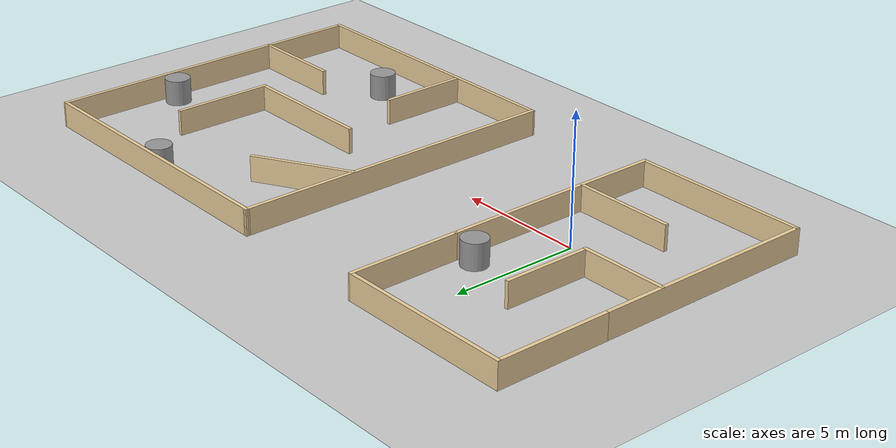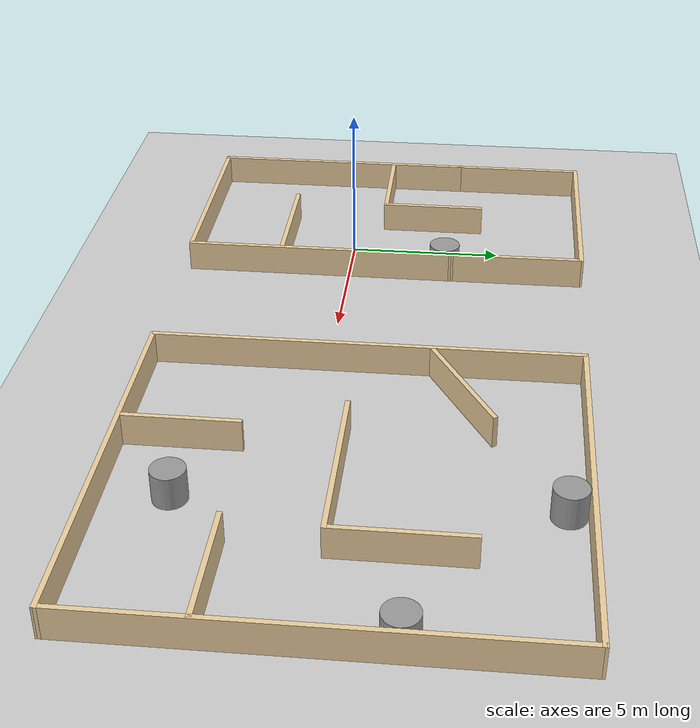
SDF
<sdf version="1.7">
 <world name="racecar_rl_env">
  <light name="sun" type="directional">
   <pose>0 0 10 0 -0 0</pose>
   <diffuse>0.8 0.8 0.8 1</diffuse>
   <specular>0.2 0.2 0.2 1</specular>
   <attenuation>
    <range>1000</range>
    <constant>0.9</constant>
    <linear>0.01</linear>
    <quadratic>0.001</quadratic>
   </attenuation>
   <direction>-0.5 0.1 -0.9</direction>
   <spot><inner_angle>0</inner_angle><outer_angle>0</outer_angle><falloff>0</falloff></spot>
  </light>
  <model name="ground_plane">
   <static>1</static>
   <link name="link">
    <collision name="collision">
     <geometry><plane><normal>0 0 1</normal><size>100 100</size></plane></geometry>
     <surface>
      <contact><collide_bitmask>65535</collide_bitmask></contact>
      <friction><ode><mu>100</mu><mu2>50</mu2></ode></friction>
     </surface>
    </collision>
    <visual name="visual">
     <cast_shadows>0</cast_shadows>
     <geometry><plane><normal>0 0 1</normal><size>100 100</size></plane></geometry>
     <material>
      <script><uri>file://media/materials/scripts/gazebo.material</uri><name>Gazebo/Grey</name></script>
     </material>
    </visual>
   </link>
  </model>
  <gravity>0 0 -9.8</gravity>
  <magnetic_field>6e-06 2.3e-05 -4.2e-05</magnetic_field>
  <atmosphere type="adiabatic"/>
  <physics type="ode">
   <max_step_size>0.001</max_step_size>
   <real_time_factor>1</real_time_factor>
   <real_time_update_rate>1000</real_time_update_rate>
  </physics>
  <scene><ambient>0.4 0.4 0.4 1</ambient><background>0.7 0.7 0.7 1</background><shadows>1</shadows></scene>
  <spherical_coordinates>
   <surface_model>EARTH_WGS84</surface_model>
   <latitude_deg>0</latitude_deg>
   <longitude_deg>0</longitude_deg>
   <elevation>0</elevation>
   <heading_deg>0</heading_deg>
  </spherical_coordinates>
  <model name="rl_env">
   <pose>7.24657 1.2102 0 0 -0 0</pose>
   <link name="Wall_0">
    <collision name="Wall_0_Collision">
     <geometry><box><size>7.026 0.15 1</size></box></geometry>
     <pose>0 0 0.5 0 -0 0</pose>
    </collision>
    <visual name="Wall_0_Visual">
     <pose>0 0 0.5 0 -0 0</pose>
     <geometry><box><size>7.026 0.15 1</size></box></geometry>
     <material>
      <script><uri>file://media/materials/scripts/gazebo.material</uri><name>Gazebo/Grey</name></script>
      <ambient>0.921569 0.807843 0.615686 1</ambient>
     </material>
     <meta><layer>0</layer></meta>
    </visual>
    <pose>-8.82857 -6.6002 0 0 -0 0</pose>
   </link>
   <link name="Wall_1">
    <collision name="Wall_1_Collision">
     <geometry><box><size>9 0.15 1</size></box></geometry>
     <pose>0 0 0.5 0 -0 0</pose>
    </collision>
    <visual name="Wall_1_Visual">
     <pose>0 0 0.5 0 -0 0</pose>
     <geometry><box><size>9 0.15 1</size></box></geometry>
     <material>
      <script><uri>file://media/materials/scripts/gazebo.material</uri><name>Gazebo/Grey</name></script>
      <ambient>0.921569 0.807843 0.615686 1</ambient>
     </material>
     <meta><layer>0</layer></meta>
    </visual>
    <pose>-5.39057 -2.1752 0 0 -0 1.5708</pose>
   </link>
   <link name="Wall_10">
    <collision name="Wall_10_Collision">
     <geometry><box><size>4.5 0.15 1</size></box></geometry>
     <pose>0 0 0.5 0 -0 0</pose>
    </collision>
    <visual name="Wall_10_Visual">
     <pose>0 0 0.5 0 -0 0</pose>
     <geometry><box><size>4.5 0.15 1</size></box></geometry>
     <material>
      <script><uri>file://media/materials/scripts/gazebo.material</uri><name>Gazebo/Grey</name></script>
      <ambient>0.921569 0.807843 0.615686 1</ambient>
     </material>
     <meta><layer>0</layer></meta>
    </visual>
    <pose>-5.40357 4.4248 0 0 -0 1.57677</pose>
   </link>
   <link name="Wall_11">
    <collision name="Wall_11_Collision">
     <geometry><box><size>7 0.15 1</size></box></geometry>
     <pose>0 0 0.5 0 -0 0</pose>
    </collision>
    <visual name="Wall_11_Visual">
     <pose>0 0 0.5 0 -0 0</pose>
     <geometry><box><size>7 0.15 1</size></box></geometry>
     <material>
      <script><uri>file://media/materials/scripts/gazebo.material</uri><name>Gazebo/Grey</name></script>
      <ambient>0.921569 0.807843 0.615686 1</ambient>
     </material>
     <meta><layer>0</layer></meta>
    </visual>
    <pose>-8.84157 6.5998 0 0 -0 3.14159</pose>
   </link>
   <link name="Wall_12">
    <collision name="Wall_12_Collision">
     <geometry><box><size>4.5 0.15 1</size></box></geometry>
     <pose>0 0 0.5 0 -0 0</pose>
    </collision>
    <visual name="Wall_12_Visual">
     <pose>0 0 0.5 0 -0 0</pose>
     <geometry><box><size>4.5 0.15 1</size></box></geometry>
     <material>
      <script><uri>file://media/materials/scripts/gazebo.material</uri><name>Gazebo/Grey</name></script>
      <ambient>0.921569 0.807843 0.615686 1</ambient>
     </material>
     <meta><layer>0</layer></meta>
    </visual>
    <pose>-12.2666 4.4248 0 0 -0 -1.5708</pose>
   </link>
   <link name="Wall_14">
    <collision name="Wall_14_Collision">
     <geometry><box><size>3.5 0.15 1</size></box></geometry>
     <pose>0 0 0.5 0 -0 0</pose>
    </collision>
    <visual name="Wall_14_Visual">
     <pose>0 0 0.5 0 -0 0</pose>
     <geometry><box><size>3.5 0.15 1</size></box></geometry>
     <material>
      <script><uri>file://media/materials/scripts/gazebo.material</uri><name>Gazebo/Grey</name></script>
      <ambient>0.921569 0.807843 0.615686 1</ambient>
     </material>
     <meta><layer>0</layer></meta>
    </visual>
    <pose>-8.89757 1.4448 0 0 -0 1.5708</pose>
   </link>
   <link name="Wall_16">
    <collision name="Wall_16_Collision">
     <geometry><box><size>12 0.15 1</size></box></geometry>
     <pose>0 0 0.5 0 -0 0</pose>
    </collision>
    <visual name="Wall_16_Visual">
     <pose>0 0 0.5 0 -0 0</pose>
     <geometry><box><size>12 0.15 1</size></box></geometry>
     <material>
      <script><uri>file://media/materials/scripts/gazebo.material</uri><name>Gazebo/Grey</name></script>
      <ambient>0.921569 0.807843 0.615686 1</ambient>
     </material>
     <meta><layer>0</layer></meta>
    </visual>
    <pose>6.34143 -6.5702 0 0 -0 0</pose>
   </link>
   <link name="Wall_17">
    <collision name="Wall_17_Collision">
     <geometry><box><size>13.25 0.15 1</size></box></geometry>
     <pose>0 0 0.5 0 -0 0</pose>
    </collision>
    <visual name="Wall_17_Visual">
     <pose>0 0 0.5 0 -0 0</pose>
     <geometry><box><size>13.25 0.15 1</size></box></geometry>
     <material>
      <script><uri>file://media/materials/scripts/gazebo.material</uri><name>Gazebo/Grey</name></script>
      <ambient>0.921569 0.807843 0.615686 1</ambient>
     </material>
     <meta><layer>0</layer></meta>
    </visual>
    <pose>12.2534 -0.020204 0 0 -0 1.57278</pose>
   </link>
   <link name="Wall_18">
    <collision name="Wall_18_Collision">
     <geometry><box><size>12 0.15 1</size></box></geometry>
     <pose>0 0 0.5 0 -0 0</pose>
    </collision>
    <visual name="Wall_18_Visual">
     <pose>0 0 0.5 0 -0 0</pose>
     <geometry><box><size>12 0.15 1</size></box></geometry>
     <material>
      <script><uri>file://media/materials/scripts/gazebo.material</uri><name>Gazebo/Grey</name></script>
      <ambient>0.921569 0.807843 0.615686 1</ambient>
     </material>
     <meta><layer>0</layer></meta>
    </visual>
    <pose>6.31543 6.5298 0 0 -0 3.14159</pose>
   </link>
   <link name="Wall_19">
    <collision name="Wall_19_Collision">
     <geometry><box><size>13.25 0.15 1</size></box></geometry>
     <pose>0 0 0.5 0 -0 0</pose>
    </collision>
    <visual name="Wall_19_Visual">
     <pose>0 0 0.5 0 -0 0</pose>
     <geometry><box><size>13.25 0.15 1</size></box></geometry>
     <material>
      <script><uri>file://media/materials/scripts/gazebo.material</uri><name>Gazebo/Grey</name></script>
      <ambient>0.921569 0.807843 0.615686 1</ambient>
     </material>
     <meta><layer>0</layer></meta>
    </visual>
    <pose>0.403426 -0.020204 0 0 -0 -1.56881</pose>
   </link>
   <link name="Wall_21">
    <collision name="Wall_21_Collision">
     <geometry><box><size>5.5 0.15 1</size></box></geometry>
     <pose>0 0 0.5 0 -0 0</pose>
    </collision>
    <visual name="Wall_21_Visual">
     <pose>0 0 0.5 0 -0 0</pose>
     <geometry><box><size>5.5 0.15 1</size></box></geometry>
     <material>
      <script><uri>file://media/materials/scripts/gazebo.material</uri><name>Gazebo/Grey</name></script>
      <ambient>0.921569 0.807843 0.615686 1</ambient>
     </material>
     <meta><layer>0</layer></meta>
    </visual>
    <pose>6.15943 -0.253204 0 0 -0 0</pose>
   </link>
   <link name="Wall_22">
    <collision name="Wall_22_Collision">
     <geometry><box><size>4 0.15 1</size></box></geometry>
     <pose>0 0 0.5 0 -0 0</pose>
    </collision>
    <visual name="Wall_22_Visual">
     <pose>0 0 0.5 0 -0 0</pose>
     <geometry><box><size>4 0.15 1</size></box></geometry>
     <material>
      <script><uri>file://media/materials/scripts/gazebo.material</uri><name>Gazebo/Grey</name></script>
      <ambient>0.921569 0.807843 0.615686 1</ambient>
     </material>
     <meta><layer>0</layer></meta>
    </visual>
    <pose>8.83443 1.6718 0 0 -0 1.5708</pose>
   </link>
   <link name="Wall_24">
    <collision name="Wall_24_Collision">
     <geometry><box><size>3.5 0.15 1</size></box></geometry>
     <pose>0 0 0.5 0 -0 0</pose>
    </collision>
    <visual name="Wall_24_Visual">
     <pose>0 0 0.5 0 -0 0</pose>
     <geometry><box><size>3.5 0.15 1</size></box></geometry>
     <material>
      <script><uri>file://media/materials/scripts/gazebo.material</uri><name>Gazebo/Grey</name></script>
      <ambient>0.921569 0.807843 0.615686 1</ambient>
     </material>
     <meta><layer>0</layer></meta>
    </visual>
    <pose>4.65543 -4.8042 0 0 -0 1.5708</pose>
   </link>
   <link name="Wall_26">
    <collision name="Wall_26_Collision">
     <geometry><box><size>3.75 0.15 1</size></box></geometry>
     <pose>0 0 0.5 0 -0 0</pose>
    </collision>
    <visual name="Wall_26_Visual">
     <pose>0 0 0.5 0 -0 0</pose>
     <geometry><box><size>3.75 0.15 1</size></box></geometry>
     <material>
      <script><uri>file://media/materials/scripts/gazebo.material</uri><name>Gazebo/Grey</name></script>
      <ambient>0.921569 0.807843 0.615686 1</ambient>
     </material>
     <meta><layer>0</layer></meta>
    </visual>
    <pose>10.4094 -2.9372 0 0 -0 3.14159</pose>
   </link>
   <link name="Wall_28">
    <collision name="Wall_28_Collision">
     <geometry><box><size>4 0.15 1</size></box></geometry>
     <pose>0 0 0.5 0 -0 0</pose>
    </collision>
    <visual name="Wall_28_Visual">
     <pose>0 0 0.5 0 -0 0</pose>
     <geometry><box><size>4 0.15 1</size></box></geometry>
     <material>
      <script><uri>file://media/materials/scripts/gazebo.material</uri><name>Gazebo/Grey</name></script>
      <ambient>0.921569 0.807843 0.615686 1</ambient>
     </material>
     <meta><layer>0</layer></meta>
    </visual>
    <pose>2.10043 2.9213 0 0 -0 0.523624</pose>
   </link>
   <link name="Wall_3">
    <collision name="Wall_3_Collision">
     <geometry><box><size>9 0.15 1</size></box></geometry>
     <pose>0 0 0.5 0 -0 0</pose>
    </collision>
    <visual name="Wall_3_Visual">
     <pose>0 0 0.5 0 -0 0</pose>
     <geometry><box><size>9 0.15 1</size></box></geometry>
     <material>
      <script><uri>file://media/materials/scripts/gazebo.material</uri><name>Gazebo/Grey</name></script>
      <ambient>0.921569 0.807843 0.615686 1</ambient>
     </material>
     <meta><layer>0</layer></meta>
    </visual>
    <pose>-12.2666 -2.1752 0 0 -0 -1.5708</pose>
   </link>
   <link name="Wall_6">
    <collision name="Wall_6_Collision">
     <geometry><box><size>3.5 0.15 1</size></box></geometry>
     <pose>0 0 0.5 0 -0 0</pose>
    </collision>
    <visual name="Wall_6_Visual">
     <pose>0 0 0.5 0 -0 0</pose>
     <geometry><box><size>3.5 0.15 1</size></box></geometry>
     <material>
      <script><uri>file://media/materials/scripts/gazebo.material</uri><name>Gazebo/Grey</name></script>
      <ambient>0.921569 0.807843 0.615686 1</ambient>
     </material>
     <meta><layer>0</layer></meta>
    </visual>
    <pose>-10.5726 -0.230204 0 0 -0 0</pose>
   </link>
   <link name="Wall_8">
    <collision name="Wall_8_Collision">
     <geometry><box><size>4 0.15 1</size></box></geometry>
     <pose>0 0 0.5 0 -0 0</pose>
    </collision>
    <visual name="Wall_8_Visual">
     <pose>0 0 0.5 0 -0 0</pose>
     <geometry><box><size>4 0.15 1</size></box></geometry>
     <material>
      <script><uri>file://media/materials/scripts/gazebo.material</uri><name>Gazebo/Grey</name></script>
      <ambient>0.921569 0.807843 0.615686 1</ambient>
     </material>
     <meta><layer>0</layer></meta>
    </visual>
    <pose>-7.38457 -3.4922 0 0 -0 3.14159</pose>
   </link>
   <static>1</static>
  </model>
  <model name="unit_cylinder">
   <pose>1.18623 3.21908 0.499993 -3e-06 -3e-06 0</pose>
   <link name="link">
    <inertial>
     <mass>1</mass>
     <inertia><ixx>0.145833</ixx><ixy>0</ixy><ixz>0</ixz><iyy>0.145833</iyy><iyz>0</iyz><izz>0.125</izz></inertia>
    </inertial>
    <collision name="collision">
     <geometry><cylinder><radius>0.5</radius><length>1</length></cylinder></geometry>
    </collision>
    <visual name="visual">
     <geometry><cylinder><radius>0.5</radius><length>1</length></cylinder></geometry>
     <material>
      <script><name>Gazebo/Grey</name><uri>file://media/materials/scripts/gazebo.material</uri></script>
     </material>
    </visual>
   </link>
  </model>
  <model name="unit_cylinder_0">
   <pose>14.1996 -3.42551 0.499997 3e-06 4e-06 -0</pose>
   <link name="link">
    <inertial>
     <mass>1</mass>
     <inertia><ixx>0.145833</ixx><ixy>0</ixy><ixz>0</ixz><iyy>0.145833</iyy><iyz>0</iyz><izz>0.125</izz></inertia>
    </inertial>
    <collision name="collision">
     <geometry><cylinder><radius>0.5</radius><length>1</length></cylinder></geometry>
    </collision>
    <visual name="visual">
     <geometry><cylinder><radius>0.5</radius><length>1</length></cylinder></geometry>
     <material>
      <script><name>Gazebo/Grey</name><uri>file://media/materials/scripts/gazebo.material</uri></script>
     </material>
    </visual>
   </link>
  </model>
  <model name="unit_cylinder_1">
   <pose>13.9657 7.1502 0.499993 -3e-06 -4e-06 -0</pose>
   <link name="link">
    <inertial>
     <mass>1</mass>
     <inertia><ixx>0.145833</ixx><ixy>0</ixy><ixz>0</ixz><iyy>0.145833</iyy><iyz>0</iyz><izz>0.125</izz></inertia>
    </inertial>
    <collision name="collision">
     <geometry><cylinder><radius>0.5</radius><length>1</length></cylinder></geometry>
    </collision>
    <visual name="visual">
     <geometry><cylinder><radius>0.5</radius><length>1</length></cylinder></geometry>
     <material>
      <script><name>Gazebo/Grey</name><uri>file://media/materials/scripts/gazebo.material</uri></script>
     </material>
    </visual>
   </link>
  </model>
  <model name="unit_cylinder_2">
   <pose>18.907 3.1132 0.499997 3e-06 4e-06 -0</pose>
   <link name="link">
    <inertial>
     <mass>1</mass>
     <inertia><ixx>0.145833</ixx><ixy>0</ixy><ixz>0</ixz><iyy>0.145833</iyy><iyz>0</iyz><izz>0.125</izz></inertia>
    </inertial>
    <collision name="collision">
     <geometry><cylinder><radius>0.5</radius><length>1</length></cylinder></geometry>
    </collision>
    <visual name="visual">
     <geometry><cylinder><radius>0.5</radius><length>1</length></cylinder></geometry>
     <material>
      <script><name>Gazebo/Grey</name><uri>file://media/materials/scripts/gazebo.material</uri></script>
     </material>
    </visual>
   </link>
  </model>
 </world>
</sdf>
